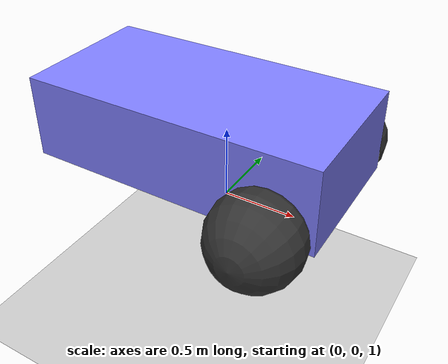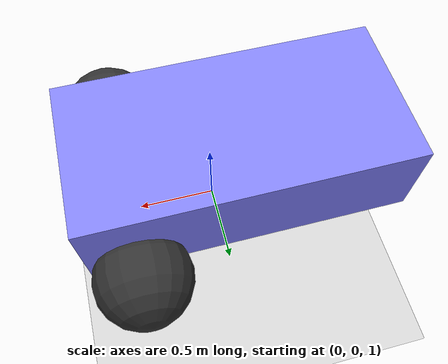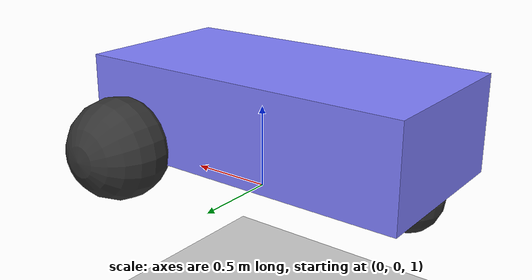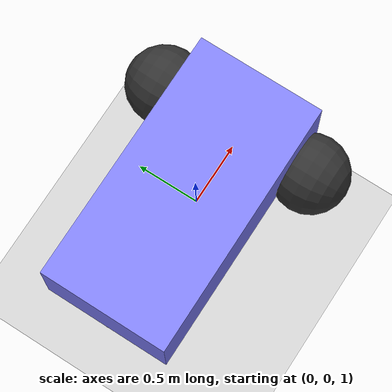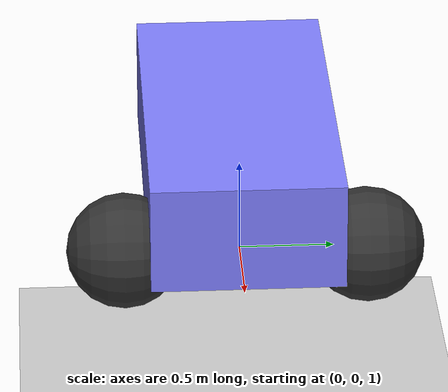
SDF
<?xml version="1.0" ?>
<sdf version="1.8">
  <world name="demo">

    <plugin
      filename="gz-sim-physics-system"
      name="gz::sim::systems::Physics">
    </plugin>
    <plugin
      filename="gz-sim-sensors-system"
      name="gz::sim::systems::Sensors">
      <render_engine>ogre2</render_engine>
    </plugin>
    <plugin
      filename="gz-sim-user-commands-system"
      name="gz::sim::systems::UserCommands">
    </plugin>
    <plugin
      filename="gz-sim-scene-broadcaster-system"
      name="gz::sim::systems::SceneBroadcaster">
    </plugin>
    <light name="sun" type="directional">
      <cast_shadows>true</cast_shadows>
      <pose>0 0 10 0 0 0</pose>
      <diffuse>0.8 0.8 0.8 1</diffuse>
      <specular>0.2 0.2 0.2 1</specular>
      <attenuation>
        <range>1000</range>
        <constant>0.9</constant>
        <linear>0.01</linear>
        <quadratic>0.001</quadratic>
      </attenuation>
      <direction>-0.5 0.1 -0.9</direction>
    </light>

    <model name="ground_plane">
      <static>true</static>
      <link name="link">
        <collision name="collision">
          <geometry>
            <plane>
              <normal>0 0 1</normal>
              <size>100 100</size>
            </plane>
          </geometry>
        </collision>
        <visual name="visual">
          <geometry>
            <plane>
              <normal>0 0 1</normal>
              <size>100 100</size>
            </plane>
          </geometry>
          <material>
            <ambient>0.8 0.8 0.8 1</ambient>
            <diffuse>0.8 0.8 0.8 1</diffuse>
            <specular>0.8 0.8 0.8 1</specular>
          </material>
        </visual>
      </link>
    </model>

    <model name="vehicle_with_camera">
      <pose>0 0 1   0 0 0</pose>
      <include>
        <uri>package://ros_gz_sim_demos/models/vehicle</uri>
        <name>vehicle</name>
      </include>
      <include>
        <uri>package://ros_gz_sim_demos/models/camera_sensor</uri>
      </include>
      <joint name="camer_sensor_joint" type="fixed">
        <parent>vehicle</parent>
        <child>camera_sensor</child>
      </joint>
    </model>
  </world>
</sdf>

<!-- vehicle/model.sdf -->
<sdf version="1.8">
    <model name='vehicle'>
      <pose>0 0 0.325 0 0 0</pose>
      <link name='chassis'>
        <pose>-0.151427 -0 0.175 0 -0 0</pose>
        <inertial>
          <mass>1.14395</mass>
          <inertia>
            <ixx>0.126164</ixx>
            <ixy>0</ixy>
            <ixz>0</ixz>
            <iyy>0.416519</iyy>
            <iyz>0</iyz>
            <izz>0.481014</izz>
          </inertia>
        </inertial>
        <visual name='visual_chassis'>
          <geometry>
            <box>
              <size>2.01142 1 0.568726</size>
            </box>
          </geometry>
          <material>
            <ambient>0.5 0.5 1.0 1</ambient>
            <diffuse>0.5 0.5 1.0 1</diffuse>
            <specular>0.0 0.0 1.0 1</specular>
          </material>
        </visual>
        <collision name='collision_chassis'>
          <geometry>
            <box>
              <size>2.01142 1 0.568726</size>
            </box>
          </geometry>
        </collision>
      </link>

      <link name='left_wheel'>
        <pose>0.554283 0.625029 -0.025 -1.5707 0 0</pose>
        <inertial>
          <mass>2</mass>
          <inertia>
            <ixx>0.145833</ixx>
            <ixy>0</ixy>
            <ixz>0</ixz>
            <iyy>0.145833</iyy>
            <iyz>0</iyz>
            <izz>0.125</izz>
          </inertia>
        </inertial>
        <visual name='visual_left_wheel'>
          <geometry>
            <sphere>
              <radius>0.3</radius>
            </sphere>
          </geometry>
          <material>
            <ambient>0.2 0.2 0.2 1</ambient>
            <diffuse>0.2 0.2 0.2 1</diffuse>
            <specular>0.2 0.2 0.2 1</specular>
          </material>
        </visual>
        <collision name='collision_left_wheel'>
          <geometry>
            <sphere>
              <radius>0.3</radius>
            </sphere>
          </geometry>
        </collision>
      </link>

      <link name='right_wheel'>
        <pose>0.554282 -0.625029 -0.025 -1.5707 0 0</pose>
        <inertial>
          <mass>2</mass>
          <inertia>
            <ixx>0.145833</ixx>
            <ixy>0</ixy>
            <ixz>0</ixz>
            <iyy>0.145833</iyy>
            <iyz>0</iyz>
            <izz>0.125</izz>
          </inertia>
        </inertial>
        <visual name='visual_right_wheel'>
          <geometry>
            <sphere>
              <radius>0.3</radius>
            </sphere>
          </geometry>
          <material>
            <ambient>0.2 0.2 0.2 1</ambient>
            <diffuse>0.2 0.2 0.2 1</diffuse>
            <specular>0.2 0.2 0.2 1</specular>
          </material>
        </visual>
        <collision name='collision_right_wheel'>
          <geometry>
            <sphere>
              <radius>0.3</radius>
            </sphere>
          </geometry>
        </collision>
      </link>

      <link name='caster'>
        <pose>-0.957138 -0 -0.125 0 -0 0</pose>
        <inertial>
          <mass>1</mass>
          <inertia>
            <ixx>0.1</ixx>
            <ixy>0</ixy>
            <ixz>0</ixz>
            <iyy>0.1</iyy>
            <iyz>0</iyz>
            <izz>0.1</izz>
          </inertia>
        </inertial>
        <visual name='visual_caster'>
          <geometry>
            <sphere>
              <radius>0.2</radius>
            </sphere>
          </geometry>
          <material>
            <ambient>0.2 0.2 0.2 1</ambient>
            <diffuse>0.2 0.2 0.2 1</diffuse>
            <specular>0.2 0.2 0.2 1</specular>
          </material>
        </visual>
        <collision name='collision_caster'>
          <geometry>
            <sphere>
              <radius>0.2</radius>
            </sphere>
          </geometry>
        </collision>
      </link>

      <joint name='left_wheel_joint' type='revolute'>
        <parent>chassis</parent>
        <child>left_wheel</child>
        <axis>
          <xyz>0 0 1</xyz>
          <limit>
            <lower>-1.79769e+308</lower>
            <upper>1.79769e+308</upper>
          </limit>
        </axis>
      </joint>

      <joint name='right_wheel_joint' type='revolute'>
        <parent>chassis</parent>
        <child>right_wheel</child>
        <axis>
          <xyz>0 0 1</xyz>
          <limit>
            <lower>-1.79769e+308</lower>
            <upper>1.79769e+308</upper>
          </limit>
        </axis>
      </joint>

      <joint name='caster_wheel' type='ball'>
        <parent>chassis</parent>
        <child>caster</child>
      </joint>

      <plugin
        filename="gz-sim-diff-drive-system"
        name="gz::sim::systems::DiffDrive">
        <left_joint>left_wheel_joint</left_joint>
        <right_joint>right_wheel_joint</right_joint>
        <wheel_separation>1.25</wheel_separation>
        <wheel_radius>0.3</wheel_radius>
        <odom_publish_frequency>1</odom_publish_frequency>
      </plugin>

    </model>
</sdf>

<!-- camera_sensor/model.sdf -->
<sdf version="1.6">
  <model name="camera_sensor">
    <link name="sensor_link">
      <inertial>
        <mass>0.001</mass>
        <inertia>
          <ixx>0.0001</ixx>
          <iyy>0.0001</iyy>
          <izz>0.0001</izz>
        </inertia>
      </inertial>
      <sensor name="camera" type="camera">
        <camera>
          <horizontal_fov>1.047</horizontal_fov>
          <image>
            <width>320</width>
            <height>240</height>
          </image>
          <clip>
            <near>0.1</near>
            <far>100</far>
          </clip>
        </camera>
        <always_on>1</always_on>
        <update_rate>30</update_rate>
        <visualize>true</visualize>
        <topic>camera</topic>
      </sensor>
    </link>
  </model>
</sdf>
